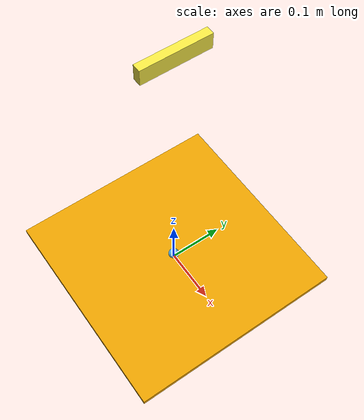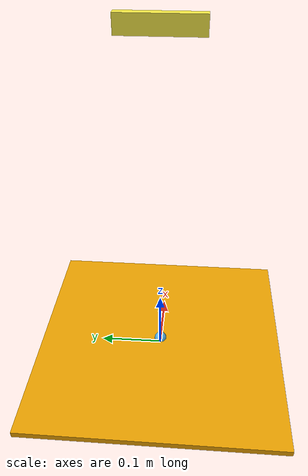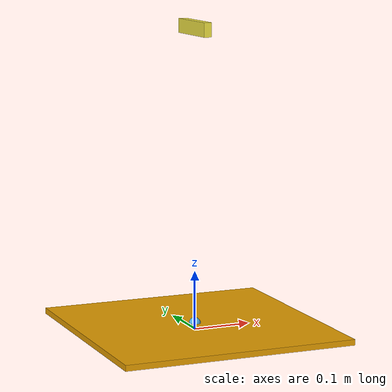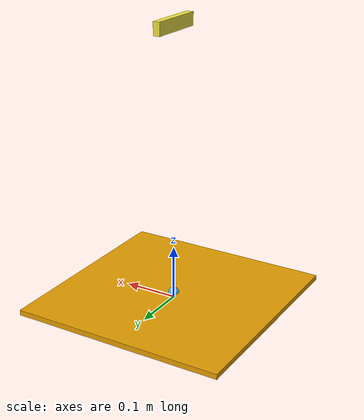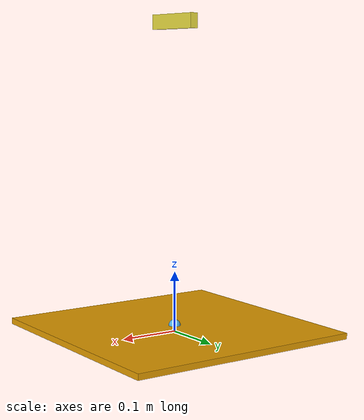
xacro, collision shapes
<?xml version="1.0"?>
<robot name="test_model" xmlns:xacro="http://www.ros.org/wiki/xacro">

  <link name="base_footprint">
    <visual>
      <origin rpy="0 0 0 " xyz="0 0 0.005"/>
      <geometry>
          <box size="0.4 0.4 0.01"/>
      </geometry>
    </visual>
    <collision>
      <origin rpy="0 0 0 " xyz="0 0 0.005"/>
      <geometry>
        <box size="0.4 0.4 0.01"/>
      </geometry>
    </collision>
    <inertial>
      <origin rpy="0 0 0 " xyz="0 0 0.005"/>
      <geometry>
        <box size="0.4 0.4 0.01"/>
      </geometry>
      <mass value="100"/>
      <inertia ixx="1.0265" ixy="0" ixz="0" iyy="1.3944999999999999" iyz="0" izz="2.1320000000000001"/>
    </inertial>
  </link>

  <joint name="footprint_joint" type="fixed">
    <parent link="base_footprint"/>
    <child link="base_link"/>
    <origin rpy="0 0 0" xyz="0 0 0.01"/>
  </joint>

  <link name="base_link">
    <visual>
      <origin rpy="0 0 0" xyz="0 0 0"/>
      <geometry>
        <sphere radius="0.01"/>
      </geometry>
    </visual>
    <collision>
      <origin rpy="0 0 0" xyz="0 0 0"/>
      <geometry>
        <sphere radius="0.01"/>
      </geometry>
    </collision>
  </link>

  <!-- TEST -->

  <xacro:include filename="$(find realsense_ros_gazebo)/xacro/tracker.xacro"/>
  <xacro:realsense_T265 sensor_name="camera" parent_link="base_link" rate="30.0">
    <origin rpy="0 0 0" xyz="0 0 0.5"/>
  </xacro:realsense_T265>

</robot>

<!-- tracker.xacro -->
<robot xmlns:xacro="http://www.ros.org/wiki/xacro">

  <xacro:macro name="T265_fisheye" params="sensor_name reference_frame topic rate">
    <gazebo reference="${reference_frame}">
      <sensor name="camera" type="wideanglecamera">
        <camera>
          <horizontal_fov>6.283</horizontal_fov>
          <image>
            <width>800</width>
            <height>848</height>
          </image>
          <clip>
            <near>0.1</near>
            <far>100</far>
          </clip>
          <lens>
            <type>custom</type>
            <custom_function>
              <c1>1.05</c1>
              <c2>4</c2>
              <f>1.0</f>
              <fun>tan</fun>
            </custom_function>
            <scale_to_hfov>true</scale_to_hfov>
            <cutoff_angle>3.1415</cutoff_angle>
            <env_texture_size>512</env_texture_size>
          </lens>
          <always_on>true</always_on>
          <update_rate>30</update_rate>
        </camera>
        <plugin name="camera_controller" filename="libgazebo_ros_camera.so">
          <alwaysOn>true</alwaysOn>
          <updateRate>${rate}</updateRate>
          <cameraName>${sensor_name}/${topic}</cameraName>
          <imageTopicName>image_raw</imageTopicName>
          <cameraInfoTopicName>camera_info</cameraInfoTopicName>
          <frameName>${reference_frame}</frameName>
          <hackBaseline>0.07</hackBaseline>
          <distortionK1>-0.007419134024530649</distortionK1>
          <distortionK2>0.041209351271390915</distortionK2>
          <distortionK3>-0.03811917081475258</distortionK3>
          <distortionT1>0.006366158835589886</distortionT1>
          <distortionT2>0.0</distortionT2>
          <CxPrime>416.00531005859375</CxPrime>
          <Cx>16.00531005859375</Cx>
          <Cy>403.38909912109375</Cy>
        </plugin>
      </sensor>
    </gazebo>
  </xacro:macro>

  <!-- INTEL REALSENSE T265 -->

  <xacro:macro name="realsense_T265" params="sensor_name parent_link rate *origin">

    <joint name="${sensor_name}_odom_frame_joint" type="fixed">
        <parent link="${parent_link}"/>
        <child link="${sensor_name}_odom_frame"/>
        <xacro:insert_block name="origin"/>
    </joint>

    <joint name="${sensor_name}_pose_frame_joint" type="fixed">
        <parent link="${sensor_name}_odom_frame"/>
        <child link="${sensor_name}_pose_frame"/>
        <origin rpy="0 0 0" xyz="0 0 0"/> <!-- check on real hw -->
    </joint>
    <link name="${sensor_name}_odom_frame"/>

    <link name="${sensor_name}_pose_frame">
        <visual>
            <origin rpy="1.57 0 1.57" xyz="0 0 0"/>
            <geometry>
                <mesh filename="file://$(find realsense_ros_gazebo)/meshes/realsense_t265.stl" scale="0.001 0.001 0.001"/>
            </geometry>
        </visual>
        <collision>
            <geometry>
                <box size="0.013 0.108 0.024"/>
            </geometry>
        </collision>
        <inertial>
            <mass value="0.055"/>
            <origin rpy="0 0 0" xyz="0 0 0"/>
            <inertia ixx="9.108e-05"
                     ixy="0"
                     ixz="0"
                     iyy="2.51e-06"
                     iyz="0"
                     izz="8.931e-05"/>
        </inertial>
    </link>

    <joint name="${sensor_name}_joint" type="fixed">
        <parent link="${sensor_name}_pose_frame"/>
        <child link="${sensor_name}_link"/>
        <origin rpy="0 0 0" xyz="0 0 0"/> <!-- check on real hw -->
    </joint>
    <link name="${sensor_name}_link"/>

    <joint name="${sensor_name}_fisheye1_joint" type="fixed">
        <parent link="${sensor_name}_link"/>
        <child link="${sensor_name}_fisheye1_frame"/>
        <origin rpy="0 0 0" xyz="0 0.042 0"/>
    </joint>
    <link name="${sensor_name}_fisheye1_frame"/>

    <joint name="${sensor_name}_fisheye1_optical_joint" type="fixed">
        <parent link="${sensor_name}_fisheye1_frame"/>
        <child link="${sensor_name}_fisheye1_optical_frame"/>
        <origin rpy="0 0 0" xyz="0.01 0 0"/>
    </joint>
    <link name="${sensor_name}_fisheye1_optical_frame"/>
    <xacro:T265_fisheye
      sensor_name="${sensor_name}"
      reference_frame="${sensor_name}_fisheye1_optical_frame"
      topic="fisheye1"
      rate="${rate}">
    </xacro:T265_fisheye>

    <joint name="${sensor_name}_fisheye2_joint" type="fixed">
        <parent link="${sensor_name}_link"/>
        <child link="${sensor_name}_fisheye2_frame"/>
        <origin rpy="0 0 0" xyz="0 -0.022 0"/>
    </joint>
    <link name="${sensor_name}_fisheye2_frame"/>

    <joint name="${sensor_name}_fisheye2_optical_joint" type="fixed">
        <parent link="${sensor_name}_fisheye2_frame"/>
        <child link="${sensor_name}_fisheye2_optical_frame"/>
        <origin rpy="0 0 0" xyz="0.01 0 0"/>
    </joint>
    <link name="${sensor_name}_fisheye2_optical_frame"/>
    <xacro:T265_fisheye
      sensor_name="${sensor_name}"
      reference_frame="${sensor_name}_fisheye2_optical_frame"
      topic="fisheye2"
      rate="${rate}">
    </xacro:T265_fisheye>

    <joint name="${sensor_name}_gyro_joint" type="fixed">
        <parent link="${sensor_name}_link"/>
        <child link="${sensor_name}_gyro_frame"/>
        <origin rpy="0 0 0" xyz="0 0 0"/> <!-- check on real hw -->
    </joint>
    <link name="${sensor_name}_gyro_frame"/>

    <gazebo reference="${sensor_name}_gyro_frame">
        <gravity>true</gravity>
        <sensor name="${sensor_name}_imu" type="imu">
            <always_on>true</always_on>
            <update_rate>${rate}</update_rate>
            <visualize>false</visualize>
            <plugin filename="libgazebo_ros_imu_sensor.so" name="imu_plugin">
                <topicName>${sensor_name}/gyro/sample</topicName>
                <bodyName>${sensor_name}_pose_frame</bodyName>
                <updateRateHZ>${rate}</updateRateHZ>
                <gaussianNoise>0.000001</gaussianNoise>
                <xyzOffset>0 0 0</xyzOffset>
                <rpyOffset>0 0 0</rpyOffset>
                <frameName>${sensor_name}_link</frameName>
            </plugin>
        </sensor>
    </gazebo>

    <joint name="${sensor_name}_accel_joint" type="fixed">
        <parent link="${sensor_name}_link"/>
        <child link="${sensor_name}_accel_frame"/>
        <origin rpy="0 0 0" xyz="0 0 0"/> <!-- check on real hw -->
    </joint>
    <link name="${sensor_name}_accel_frame"/> <!-- dummy -->

    <gazebo> <!-- odometry -->
        <plugin name="p3d_base_controller" filename="libgazebo_ros_p3d.so">
            <alwaysOn>true</alwaysOn>
            <updateRate>${rate}</updateRate>
            <bodyName>${sensor_name}_odom_frame</bodyName>
            <topicName>${sensor_name}/odom/sample</topicName>
            <gaussianNoise>0.001</gaussianNoise>
            <frameName>world</frameName>
            <xyzOffsets>0 0 0</xyzOffsets>
            <rpyOffsets>0 0 0</rpyOffsets>
        </plugin>
    </gazebo>

  </xacro:macro>

</robot>
